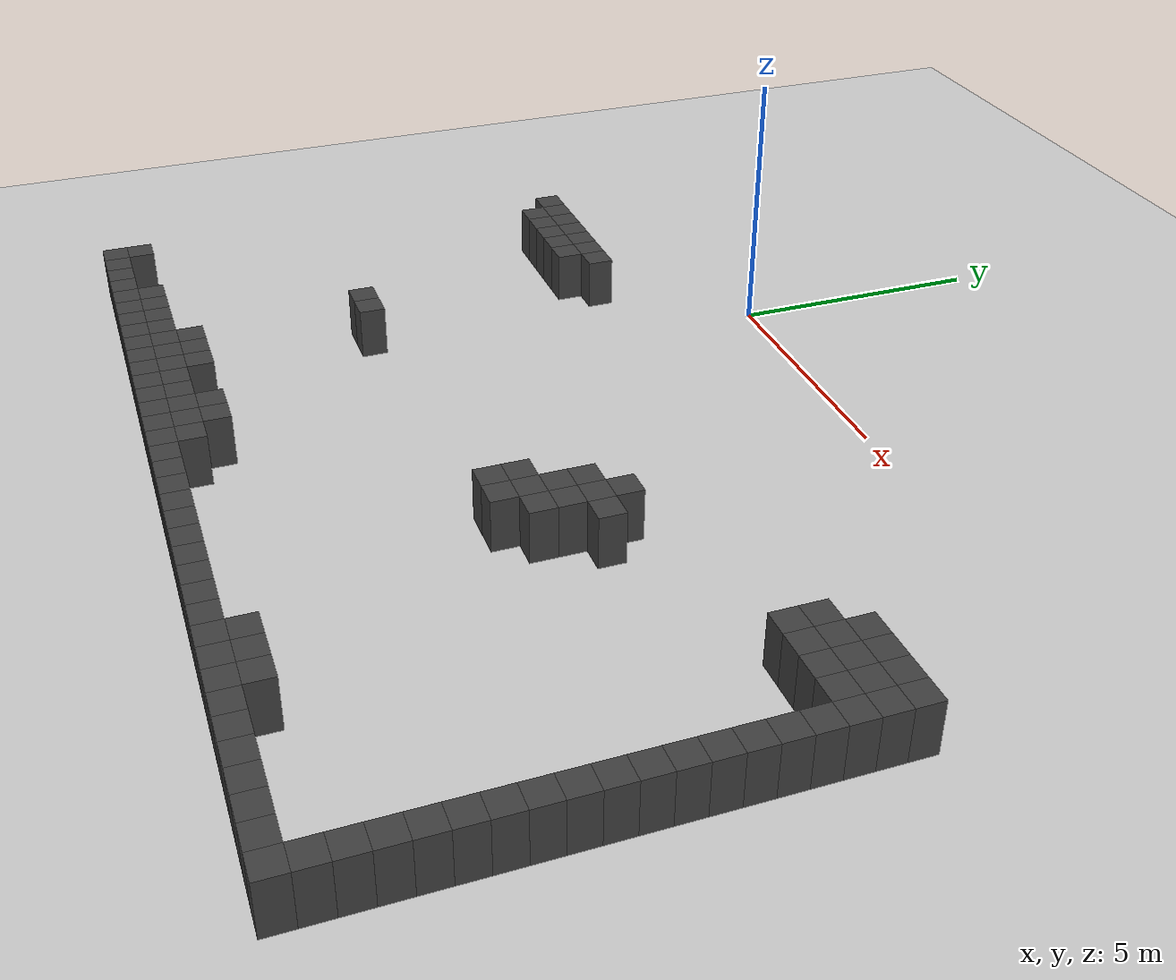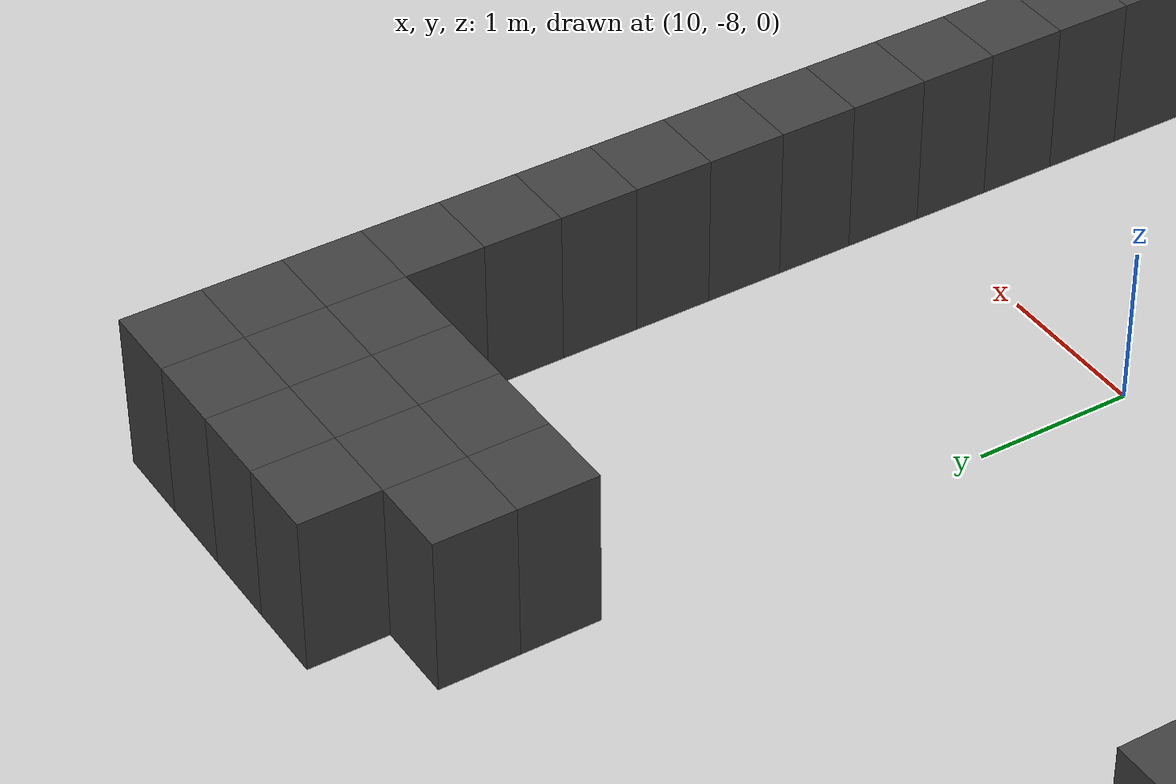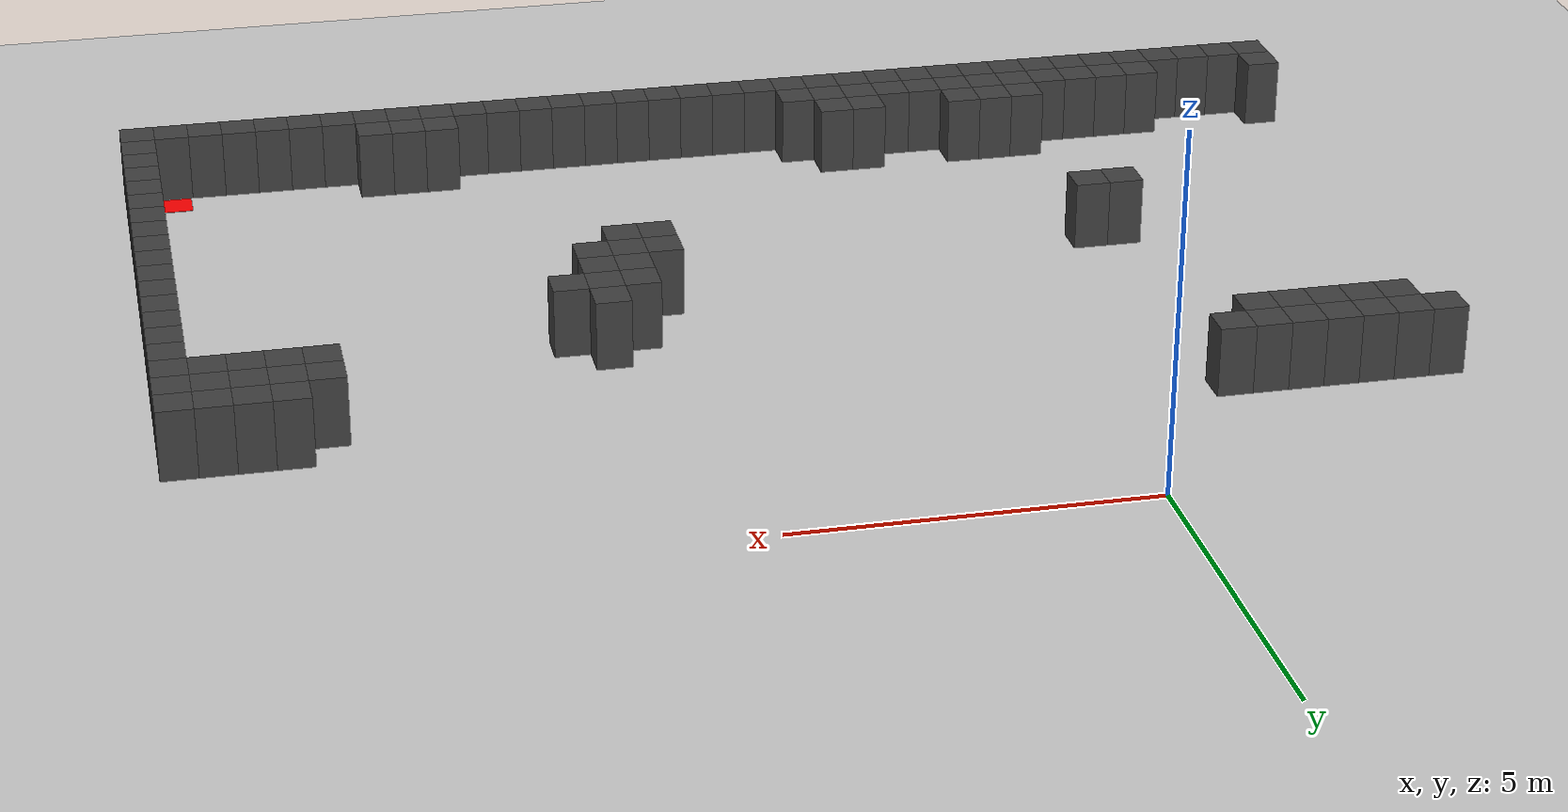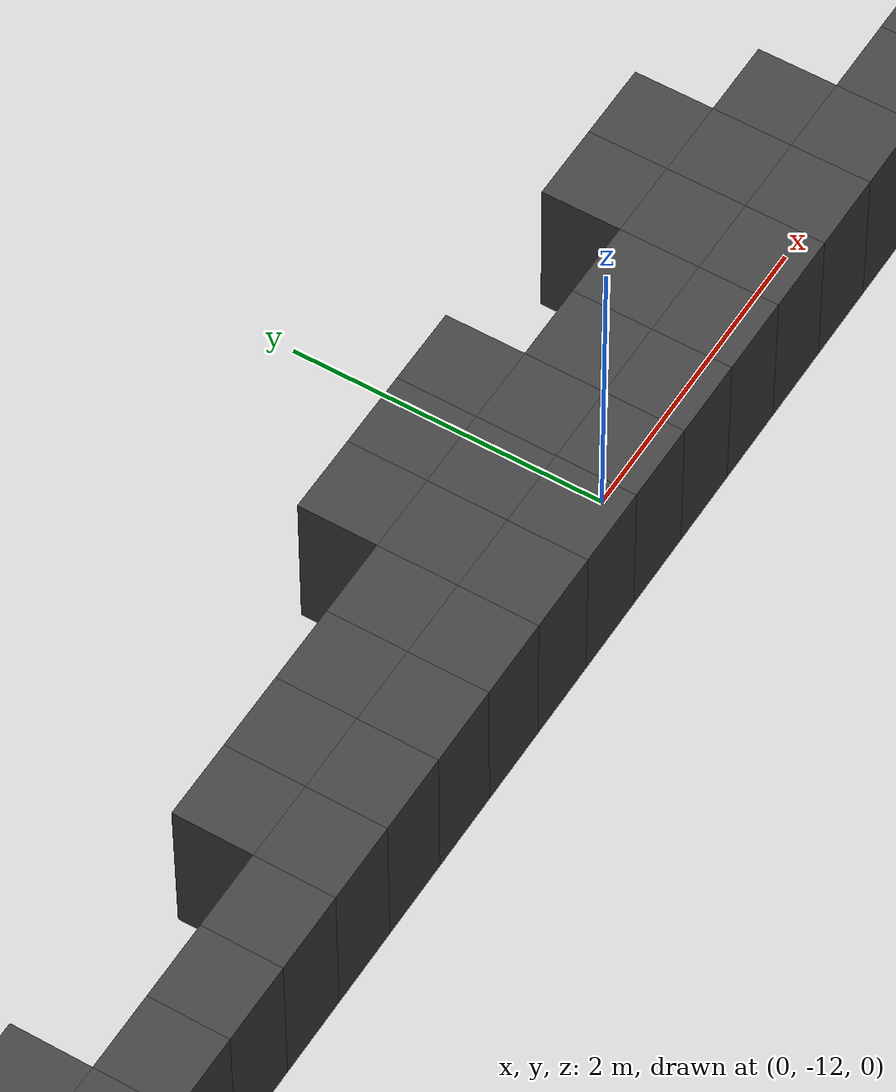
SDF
<sdf version="1.7">
 <world name="map_7219">
  <model name="ground_plane">
   <static>true</static>
   <link name="link">
    <collision name="collision">
     <geometry><plane><normal>0 0 1</normal><size>200 200</size></plane></geometry>
    </collision>
    <visual name="visual">
     <geometry><plane><normal>0 0 1</normal><size>200 200</size></plane></geometry>
     <material><ambient>0.8 0.8 0.8 1</ambient><diffuse>0.8 0.8 0.8 1</diffuse></material>
    </visual>
   </link>
  </model>
  <model name="maze_environment">
   <static>true</static>
   <link name="wall_430">
    <pose>-4.750 -2.750 0.500 0 0 0</pose>
    <collision name="col"><geometry><box><size>0.5 0.5 1.0</size></box></geometry></collision>
    <visual name="vis">
     <geometry><box><size>0.5 0.5 1.0</size></box></geometry>
     <material><ambient>0.15 0.15 0.15 1</ambient><diffuse>0.25 0.25 0.25 1</diffuse></material>
    </visual>
   </link>
   <link name="wall_431">
    <pose>-4.250 -2.750 0.500 0 0 0</pose>
    <collision name="col"><geometry><box><size>0.5 0.5 1.0</size></box></geometry></collision>
    <visual name="vis">
     <geometry><box><size>0.5 0.5 1.0</size></box></geometry>
     <material><ambient>0.15 0.15 0.15 1</ambient><diffuse>0.25 0.25 0.25 1</diffuse></material>
    </visual>
   </link>
   <link name="wall_432">
    <pose>-3.750 -2.750 0.500 0 0 0</pose>
    <collision name="col"><geometry><box><size>0.5 0.5 1.0</size></box></geometry></collision>
    <visual name="vis">
     <geometry><box><size>0.5 0.5 1.0</size></box></geometry>
     <material><ambient>0.15 0.15 0.15 1</ambient><diffuse>0.25 0.25 0.25 1</diffuse></material>
    </visual>
   </link>
   <link name="wall_433">
    <pose>-3.250 -2.750 0.500 0 0 0</pose>
    <collision name="col"><geometry><box><size>0.5 0.5 1.0</size></box></geometry></collision>
    <visual name="vis">
     <geometry><box><size>0.5 0.5 1.0</size></box></geometry>
     <material><ambient>0.15 0.15 0.15 1</ambient><diffuse>0.25 0.25 0.25 1</diffuse></material>
    </visual>
   </link>
   <link name="wall_434">
    <pose>-2.750 -2.750 0.500 0 0 0</pose>
    <collision name="col"><geometry><box><size>0.5 0.5 1.0</size></box></geometry></collision>
    <visual name="vis">
     <geometry><box><size>0.5 0.5 1.0</size></box></geometry>
     <material><ambient>0.15 0.15 0.15 1</ambient><diffuse>0.25 0.25 0.25 1</diffuse></material>
    </visual>
   </link>
   <link name="wall_435">
    <pose>-2.250 -2.750 0.500 0 0 0</pose>
    <collision name="col"><geometry><box><size>0.5 0.5 1.0</size></box></geometry></collision>
    <visual name="vis">
     <geometry><box><size>0.5 0.5 1.0</size></box></geometry>
     <material><ambient>0.15 0.15 0.15 1</ambient><diffuse>0.25 0.25 0.25 1</diffuse></material>
    </visual>
   </link>
   <link name="wall_436">
    <pose>-1.750 -2.750 0.500 0 0 0</pose>
    <collision name="col"><geometry><box><size>0.5 0.5 1.0</size></box></geometry></collision>
    <visual name="vis">
     <geometry><box><size>0.5 0.5 1.0</size></box></geometry>
     <material><ambient>0.15 0.15 0.15 1</ambient><diffuse>0.25 0.25 0.25 1</diffuse></material>
    </visual>
   </link>
   <link name="wall_440">
    <pose>-4.250 -3.250 0.500 0 0 0</pose>
    <collision name="col"><geometry><box><size>0.5 0.5 1.0</size></box></geometry></collision>
    <visual name="vis">
     <geometry><box><size>0.5 0.5 1.0</size></box></geometry>
     <material><ambient>0.15 0.15 0.15 1</ambient><diffuse>0.25 0.25 0.25 1</diffuse></material>
    </visual>
   </link>
   <link name="wall_441">
    <pose>-3.750 -3.250 0.500 0 0 0</pose>
    <collision name="col"><geometry><box><size>0.5 0.5 1.0</size></box></geometry></collision>
    <visual name="vis">
     <geometry><box><size>0.5 0.5 1.0</size></box></geometry>
     <material><ambient>0.15 0.15 0.15 1</ambient><diffuse>0.25 0.25 0.25 1</diffuse></material>
    </visual>
   </link>
   <link name="wall_442">
    <pose>-3.250 -3.250 0.500 0 0 0</pose>
    <collision name="col"><geometry><box><size>0.5 0.5 1.0</size></box></geometry></collision>
    <visual name="vis">
     <geometry><box><size>0.5 0.5 1.0</size></box></geometry>
     <material><ambient>0.15 0.15 0.15 1</ambient><diffuse>0.25 0.25 0.25 1</diffuse></material>
    </visual>
   </link>
   <link name="wall_443">
    <pose>-2.750 -3.250 0.500 0 0 0</pose>
    <collision name="col"><geometry><box><size>0.5 0.5 1.0</size></box></geometry></collision>
    <visual name="vis">
     <geometry><box><size>0.5 0.5 1.0</size></box></geometry>
     <material><ambient>0.15 0.15 0.15 1</ambient><diffuse>0.25 0.25 0.25 1</diffuse></material>
    </visual>
   </link>
   <link name="wall_444">
    <pose>-2.250 -3.250 0.500 0 0 0</pose>
    <collision name="col"><geometry><box><size>0.5 0.5 1.0</size></box></geometry></collision>
    <visual name="vis">
     <geometry><box><size>0.5 0.5 1.0</size></box></geometry>
     <material><ambient>0.15 0.15 0.15 1</ambient><diffuse>0.25 0.25 0.25 1</diffuse></material>
    </visual>
   </link>
   <link name="wall_445">
    <pose>10.750 -3.250 0.500 0 0 0</pose>
    <collision name="col"><geometry><box><size>0.5 0.5 1.0</size></box></geometry></collision>
    <visual name="vis">
     <geometry><box><size>0.5 0.5 1.0</size></box></geometry>
     <material><ambient>0.15 0.15 0.15 1</ambient><diffuse>0.25 0.25 0.25 1</diffuse></material>
    </visual>
   </link>
   <link name="wall_446">
    <pose>11.250 -3.250 0.500 0 0 0</pose>
    <collision name="col"><geometry><box><size>0.5 0.5 1.0</size></box></geometry></collision>
    <visual name="vis">
     <geometry><box><size>0.5 0.5 1.0</size></box></geometry>
     <material><ambient>0.15 0.15 0.15 1</ambient><diffuse>0.25 0.25 0.25 1</diffuse></material>
    </visual>
   </link>
   <link name="wall_447">
    <pose>11.750 -3.250 0.500 0 0 0</pose>
    <collision name="col"><geometry><box><size>0.5 0.5 1.0</size></box></geometry></collision>
    <visual name="vis">
     <geometry><box><size>0.5 0.5 1.0</size></box></geometry>
     <material><ambient>0.15 0.15 0.15 1</ambient><diffuse>0.25 0.25 0.25 1</diffuse></material>
    </visual>
   </link>
   <link name="wall_448">
    <pose>12.250 -3.250 0.500 0 0 0</pose>
    <collision name="col"><geometry><box><size>0.5 0.5 1.0</size></box></geometry></collision>
    <visual name="vis">
     <geometry><box><size>0.5 0.5 1.0</size></box></geometry>
     <material><ambient>0.15 0.15 0.15 1</ambient><diffuse>0.25 0.25 0.25 1</diffuse></material>
    </visual>
   </link>
   <link name="wall_452">
    <pose>10.250 -3.750 0.500 0 0 0</pose>
    <collision name="col"><geometry><box><size>0.5 0.5 1.0</size></box></geometry></collision>
    <visual name="vis">
     <geometry><box><size>0.5 0.5 1.0</size></box></geometry>
     <material><ambient>0.15 0.15 0.15 1</ambient><diffuse>0.25 0.25 0.25 1</diffuse></material>
    </visual>
   </link>
   <link name="wall_453">
    <pose>10.750 -3.750 0.500 0 0 0</pose>
    <collision name="col"><geometry><box><size>0.5 0.5 1.0</size></box></geometry></collision>
    <visual name="vis">
     <geometry><box><size>0.5 0.5 1.0</size></box></geometry>
     <material><ambient>0.15 0.15 0.15 1</ambient><diffuse>0.25 0.25 0.25 1</diffuse></material>
    </visual>
   </link>
   <link name="wall_454">
    <pose>11.250 -3.750 0.500 0 0 0</pose>
    <collision name="col"><geometry><box><size>0.5 0.5 1.0</size></box></geometry></collision>
    <visual name="vis">
     <geometry><box><size>0.5 0.5 1.0</size></box></geometry>
     <material><ambient>0.15 0.15 0.15 1</ambient><diffuse>0.25 0.25 0.25 1</diffuse></material>
    </visual>
   </link>
   <link name="wall_455">
    <pose>11.750 -3.750 0.500 0 0 0</pose>
    <collision name="col"><geometry><box><size>0.5 0.5 1.0</size></box></geometry></collision>
    <visual name="vis">
     <geometry><box><size>0.5 0.5 1.0</size></box></geometry>
     <material><ambient>0.15 0.15 0.15 1</ambient><diffuse>0.25 0.25 0.25 1</diffuse></material>
    </visual>
   </link>
   <link name="wall_456">
    <pose>12.250 -3.750 0.500 0 0 0</pose>
    <collision name="col"><geometry><box><size>0.5 0.5 1.0</size></box></geometry></collision>
    <visual name="vis">
     <geometry><box><size>0.5 0.5 1.0</size></box></geometry>
     <material><ambient>0.15 0.15 0.15 1</ambient><diffuse>0.25 0.25 0.25 1</diffuse></material>
    </visual>
   </link>
   <link name="wall_462">
    <pose>10.250 -4.250 0.500 0 0 0</pose>
    <collision name="col"><geometry><box><size>0.5 0.5 1.0</size></box></geometry></collision>
    <visual name="vis">
     <geometry><box><size>0.5 0.5 1.0</size></box></geometry>
     <material><ambient>0.15 0.15 0.15 1</ambient><diffuse>0.25 0.25 0.25 1</diffuse></material>
    </visual>
   </link>
   <link name="wall_463">
    <pose>10.750 -4.250 0.500 0 0 0</pose>
    <collision name="col"><geometry><box><size>0.5 0.5 1.0</size></box></geometry></collision>
    <visual name="vis">
     <geometry><box><size>0.5 0.5 1.0</size></box></geometry>
     <material><ambient>0.15 0.15 0.15 1</ambient><diffuse>0.25 0.25 0.25 1</diffuse></material>
    </visual>
   </link>
   <link name="wall_464">
    <pose>11.250 -4.250 0.500 0 0 0</pose>
    <collision name="col"><geometry><box><size>0.5 0.5 1.0</size></box></geometry></collision>
    <visual name="vis">
     <geometry><box><size>0.5 0.5 1.0</size></box></geometry>
     <material><ambient>0.15 0.15 0.15 1</ambient><diffuse>0.25 0.25 0.25 1</diffuse></material>
    </visual>
   </link>
   <link name="wall_465">
    <pose>11.750 -4.250 0.500 0 0 0</pose>
    <collision name="col"><geometry><box><size>0.5 0.5 1.0</size></box></geometry></collision>
    <visual name="vis">
     <geometry><box><size>0.5 0.5 1.0</size></box></geometry>
     <material><ambient>0.15 0.15 0.15 1</ambient><diffuse>0.25 0.25 0.25 1</diffuse></material>
    </visual>
   </link>
   <link name="wall_466">
    <pose>12.250 -4.250 0.500 0 0 0</pose>
    <collision name="col"><geometry><box><size>0.5 0.5 1.0</size></box></geometry></collision>
    <visual name="vis">
     <geometry><box><size>0.5 0.5 1.0</size></box></geometry>
     <material><ambient>0.15 0.15 0.15 1</ambient><diffuse>0.25 0.25 0.25 1</diffuse></material>
    </visual>
   </link>
   <link name="wall_473">
    <pose>12.250 -4.750 0.500 0 0 0</pose>
    <collision name="col"><geometry><box><size>0.5 0.5 1.0</size></box></geometry></collision>
    <visual name="vis">
     <geometry><box><size>0.5 0.5 1.0</size></box></geometry>
     <material><ambient>0.15 0.15 0.15 1</ambient><diffuse>0.25 0.25 0.25 1</diffuse></material>
    </visual>
   </link>
   <link name="wall_480">
    <pose>6.250 -5.250 0.500 0 0 0</pose>
    <collision name="col"><geometry><box><size>0.5 0.5 1.0</size></box></geometry></collision>
    <visual name="vis">
     <geometry><box><size>0.5 0.5 1.0</size></box></geometry>
     <material><ambient>0.15 0.15 0.15 1</ambient><diffuse>0.25 0.25 0.25 1</diffuse></material>
    </visual>
   </link>
   <link name="wall_481">
    <pose>12.250 -5.250 0.500 0 0 0</pose>
    <collision name="col"><geometry><box><size>0.5 0.5 1.0</size></box></geometry></collision>
    <visual name="vis">
     <geometry><box><size>0.5 0.5 1.0</size></box></geometry>
     <material><ambient>0.15 0.15 0.15 1</ambient><diffuse>0.25 0.25 0.25 1</diffuse></material>
    </visual>
   </link>
   <link name="wall_494">
    <pose>5.750 -5.750 0.500 0 0 0</pose>
    <collision name="col"><geometry><box><size>0.5 0.5 1.0</size></box></geometry></collision>
    <visual name="vis">
     <geometry><box><size>0.5 0.5 1.0</size></box></geometry>
     <material><ambient>0.15 0.15 0.15 1</ambient><diffuse>0.25 0.25 0.25 1</diffuse></material>
    </visual>
   </link>
   <link name="wall_495">
    <pose>6.250 -5.750 0.500 0 0 0</pose>
    <collision name="col"><geometry><box><size>0.5 0.5 1.0</size></box></geometry></collision>
    <visual name="vis">
     <geometry><box><size>0.5 0.5 1.0</size></box></geometry>
     <material><ambient>0.15 0.15 0.15 1</ambient><diffuse>0.25 0.25 0.25 1</diffuse></material>
    </visual>
   </link>
   <link name="wall_496">
    <pose>6.750 -5.750 0.500 0 0 0</pose>
    <collision name="col"><geometry><box><size>0.5 0.5 1.0</size></box></geometry></collision>
    <visual name="vis">
     <geometry><box><size>0.5 0.5 1.0</size></box></geometry>
     <material><ambient>0.15 0.15 0.15 1</ambient><diffuse>0.25 0.25 0.25 1</diffuse></material>
    </visual>
   </link>
   <link name="wall_497">
    <pose>12.250 -5.750 0.500 0 0 0</pose>
    <collision name="col"><geometry><box><size>0.5 0.5 1.0</size></box></geometry></collision>
    <visual name="vis">
     <geometry><box><size>0.5 0.5 1.0</size></box></geometry>
     <material><ambient>0.15 0.15 0.15 1</ambient><diffuse>0.25 0.25 0.25 1</diffuse></material>
    </visual>
   </link>
   <link name="wall_509">
    <pose>5.750 -6.250 0.500 0 0 0</pose>
    <collision name="col"><geometry><box><size>0.5 0.5 1.0</size></box></geometry></collision>
    <visual name="vis">
     <geometry><box><size>0.5 0.5 1.0</size></box></geometry>
     <material><ambient>0.15 0.15 0.15 1</ambient><diffuse>0.25 0.25 0.25 1</diffuse></material>
    </visual>
   </link>
   <link name="wall_510">
    <pose>6.250 -6.250 0.500 0 0 0</pose>
    <collision name="col"><geometry><box><size>0.5 0.5 1.0</size></box></geometry></collision>
    <visual name="vis">
     <geometry><box><size>0.5 0.5 1.0</size></box></geometry>
     <material><ambient>0.15 0.15 0.15 1</ambient><diffuse>0.25 0.25 0.25 1</diffuse></material>
    </visual>
   </link>
   <link name="wall_511">
    <pose>12.250 -6.250 0.500 0 0 0</pose>
    <collision name="col"><geometry><box><size>0.5 0.5 1.0</size></box></geometry></collision>
    <visual name="vis">
     <geometry><box><size>0.5 0.5 1.0</size></box></geometry>
     <material><ambient>0.15 0.15 0.15 1</ambient><diffuse>0.25 0.25 0.25 1</diffuse></material>
    </visual>
   </link>
   <link name="wall_522">
    <pose>5.250 -6.750 0.500 0 0 0</pose>
    <collision name="col"><geometry><box><size>0.5 0.5 1.0</size></box></geometry></collision>
    <visual name="vis">
     <geometry><box><size>0.5 0.5 1.0</size></box></geometry>
     <material><ambient>0.15 0.15 0.15 1</ambient><diffuse>0.25 0.25 0.25 1</diffuse></material>
    </visual>
   </link>
   <link name="wall_523">
    <pose>5.750 -6.750 0.500 0 0 0</pose>
    <collision name="col"><geometry><box><size>0.5 0.5 1.0</size></box></geometry></collision>
    <visual name="vis">
     <geometry><box><size>0.5 0.5 1.0</size></box></geometry>
     <material><ambient>0.15 0.15 0.15 1</ambient><diffuse>0.25 0.25 0.25 1</diffuse></material>
    </visual>
   </link>
   <link name="wall_524">
    <pose>6.250 -6.750 0.500 0 0 0</pose>
    <collision name="col"><geometry><box><size>0.5 0.5 1.0</size></box></geometry></collision>
    <visual name="vis">
     <geometry><box><size>0.5 0.5 1.0</size></box></geometry>
     <material><ambient>0.15 0.15 0.15 1</ambient><diffuse>0.25 0.25 0.25 1</diffuse></material>
    </visual>
   </link>
   <link name="wall_525">
    <pose>12.250 -6.750 0.500 0 0 0</pose>
    <collision name="col"><geometry><box><size>0.5 0.5 1.0</size></box></geometry></collision>
    <visual name="vis">
     <geometry><box><size>0.5 0.5 1.0</size></box></geometry>
     <material><ambient>0.15 0.15 0.15 1</ambient><diffuse>0.25 0.25 0.25 1</diffuse></material>
    </visual>
   </link>
   <link name="wall_535">
    <pose>5.250 -7.250 0.500 0 0 0</pose>
    <collision name="col"><geometry><box><size>0.5 0.5 1.0</size></box></geometry></collision>
    <visual name="vis">
     <geometry><box><size>0.5 0.5 1.0</size></box></geometry>
     <material><ambient>0.15 0.15 0.15 1</ambient><diffuse>0.25 0.25 0.25 1</diffuse></material>
    </visual>
   </link>
   <link name="wall_536">
    <pose>5.750 -7.250 0.500 0 0 0</pose>
    <collision name="col"><geometry><box><size>0.5 0.5 1.0</size></box></geometry></collision>
    <visual name="vis">
     <geometry><box><size>0.5 0.5 1.0</size></box></geometry>
     <material><ambient>0.15 0.15 0.15 1</ambient><diffuse>0.25 0.25 0.25 1</diffuse></material>
    </visual>
   </link>
   <link name="wall_537">
    <pose>12.250 -7.250 0.500 0 0 0</pose>
    <collision name="col"><geometry><box><size>0.5 0.5 1.0</size></box></geometry></collision>
    <visual name="vis">
     <geometry><box><size>0.5 0.5 1.0</size></box></geometry>
     <material><ambient>0.15 0.15 0.15 1</ambient><diffuse>0.25 0.25 0.25 1</diffuse></material>
    </visual>
   </link>
   <link name="wall_543">
    <pose>-1.750 -7.750 0.500 0 0 0</pose>
    <collision name="col"><geometry><box><size>0.5 0.5 1.0</size></box></geometry></collision>
    <visual name="vis">
     <geometry><box><size>0.5 0.5 1.0</size></box></geometry>
     <material><ambient>0.15 0.15 0.15 1</ambient><diffuse>0.25 0.25 0.25 1</diffuse></material>
    </visual>
   </link>
   <link name="wall_544">
    <pose>-1.250 -7.750 0.500 0 0 0</pose>
    <collision name="col"><geometry><box><size>0.5 0.5 1.0</size></box></geometry></collision>
    <visual name="vis">
     <geometry><box><size>0.5 0.5 1.0</size></box></geometry>
     <material><ambient>0.15 0.15 0.15 1</ambient><diffuse>0.25 0.25 0.25 1</diffuse></material>
    </visual>
   </link>
   <link name="wall_545">
    <pose>12.250 -7.750 0.500 0 0 0</pose>
    <collision name="col"><geometry><box><size>0.5 0.5 1.0</size></box></geometry></collision>
    <visual name="vis">
     <geometry><box><size>0.5 0.5 1.0</size></box></geometry>
     <material><ambient>0.15 0.15 0.15 1</ambient><diffuse>0.25 0.25 0.25 1</diffuse></material>
    </visual>
   </link>
   <link name="wall_550">
    <pose>12.250 -8.250 0.500 0 0 0</pose>
    <collision name="col"><geometry><box><size>0.5 0.5 1.0</size></box></geometry></collision>
    <visual name="vis">
     <geometry><box><size>0.5 0.5 1.0</size></box></geometry>
     <material><ambient>0.15 0.15 0.15 1</ambient><diffuse>0.25 0.25 0.25 1</diffuse></material>
    </visual>
   </link>
   <link name="wall_555">
    <pose>12.250 -8.750 0.500 0 0 0</pose>
    <collision name="col"><geometry><box><size>0.5 0.5 1.0</size></box></geometry></collision>
    <visual name="vis">
     <geometry><box><size>0.5 0.5 1.0</size></box></geometry>
     <material><ambient>0.15 0.15 0.15 1</ambient><diffuse>0.25 0.25 0.25 1</diffuse></material>
    </visual>
   </link>
   <link name="wall_560">
    <pose>12.250 -9.250 0.500 0 0 0</pose>
    <collision name="col"><geometry><box><size>0.5 0.5 1.0</size></box></geometry></collision>
    <visual name="vis">
     <geometry><box><size>0.5 0.5 1.0</size></box></geometry>
     <material><ambient>0.15 0.15 0.15 1</ambient><diffuse>0.25 0.25 0.25 1</diffuse></material>
    </visual>
   </link>
   <link name="wall_565">
    <pose>12.250 -9.750 0.500 0 0 0</pose>
    <collision name="col"><geometry><box><size>0.5 0.5 1.0</size></box></geometry></collision>
    <visual name="vis">
     <geometry><box><size>0.5 0.5 1.0</size></box></geometry>
     <material><ambient>0.15 0.15 0.15 1</ambient><diffuse>0.25 0.25 0.25 1</diffuse></material>
    </visual>
   </link>
   <link name="wall_571">
    <pose>12.250 -10.250 0.500 0 0 0</pose>
    <collision name="col"><geometry><box><size>0.5 0.5 1.0</size></box></geometry></collision>
    <visual name="vis">
     <geometry><box><size>0.5 0.5 1.0</size></box></geometry>
     <material><ambient>0.15 0.15 0.15 1</ambient><diffuse>0.25 0.25 0.25 1</diffuse></material>
    </visual>
   </link>
   <link name="wall_577">
    <pose>12.250 -10.750 0.500 0 0 0</pose>
    <collision name="col"><geometry><box><size>0.5 0.5 1.0</size></box></geometry></collision>
    <visual name="vis">
     <geometry><box><size>0.5 0.5 1.0</size></box></geometry>
     <material><ambient>0.15 0.15 0.15 1</ambient><diffuse>0.25 0.25 0.25 1</diffuse></material>
    </visual>
   </link>
   <link name="wall_584">
    <pose>-1.250 -11.250 0.500 0 0 0</pose>
    <collision name="col"><geometry><box><size>0.5 0.5 1.0</size></box></geometry></collision>
    <visual name="vis">
     <geometry><box><size>0.5 0.5 1.0</size></box></geometry>
     <material><ambient>0.15 0.15 0.15 1</ambient><diffuse>0.25 0.25 0.25 1</diffuse></material>
    </visual>
   </link>
   <link name="wall_585">
    <pose>-0.750 -11.250 0.500 0 0 0</pose>
    <collision name="col"><geometry><box><size>0.5 0.5 1.0</size></box></geometry></collision>
    <visual name="vis">
     <geometry><box><size>0.5 0.5 1.0</size></box></geometry>
     <material><ambient>0.15 0.15 0.15 1</ambient><diffuse>0.25 0.25 0.25 1</diffuse></material>
    </visual>
   </link>
   <link name="wall_586">
    <pose>-0.250 -11.250 0.500 0 0 0</pose>
    <collision name="col"><geometry><box><size>0.5 0.5 1.0</size></box></geometry></collision>
    <visual name="vis">
     <geometry><box><size>0.5 0.5 1.0</size></box></geometry>
     <material><ambient>0.15 0.15 0.15 1</ambient><diffuse>0.25 0.25 0.25 1</diffuse></material>
    </visual>
   </link>
   <link name="wall_587">
    <pose>1.250 -11.250 0.500 0 0 0</pose>
    <collision name="col"><geometry><box><size>0.5 0.5 1.0</size></box></geometry></collision>
    <visual name="vis">
     <geometry><box><size>0.5 0.5 1.0</size></box></geometry>
     <material><ambient>0.15 0.15 0.15 1</ambient><diffuse>0.25 0.25 0.25 1</diffuse></material>
    </visual>
   </link>
   <link name="wall_588">
    <pose>1.750 -11.250 0.500 0 0 0</pose>
    <collision name="col"><geometry><box><size>0.5 0.5 1.0</size></box></geometry></collision>
    <visual name="vis">
     <geometry><box><size>0.5 0.5 1.0</size></box></geometry>
     <material><ambient>0.15 0.15 0.15 1</ambient><diffuse>0.25 0.25 0.25 1</diffuse></material>
    </visual>
   </link>
   <link name="wall_589">
    <pose>12.250 -11.250 0.500 0 0 0</pose>
    <collision name="col"><geometry><box><size>0.5 0.5 1.0</size></box></geometry></collision>
    <visual name="vis">
     <geometry><box><size>0.5 0.5 1.0</size></box></geometry>
     <material><ambient>0.15 0.15 0.15 1</ambient><diffuse>0.25 0.25 0.25 1</diffuse></material>
    </visual>
   </link>
   <link name="wall_604">
    <pose>-5.250 -11.750 0.500 0 0 0</pose>
    <collision name="col"><geometry><box><size>0.5 0.5 1.0</size></box></geometry></collision>
    <visual name="vis">
     <geometry><box><size>0.5 0.5 1.0</size></box></geometry>
     <material><ambient>0.15 0.15 0.15 1</ambient><diffuse>0.25 0.25 0.25 1</diffuse></material>
    </visual>
   </link>
   <link name="wall_605">
    <pose>-3.250 -11.750 0.500 0 0 0</pose>
    <collision name="col"><geometry><box><size>0.5 0.5 1.0</size></box></geometry></collision>
    <visual name="vis">
     <geometry><box><size>0.5 0.5 1.0</size></box></geometry>
     <material><ambient>0.15 0.15 0.15 1</ambient><diffuse>0.25 0.25 0.25 1</diffuse></material>
    </visual>
   </link>
   <link name="wall_606">
    <pose>-2.750 -11.750 0.500 0 0 0</pose>
    <collision name="col"><geometry><box><size>0.5 0.5 1.0</size></box></geometry></collision>
    <visual name="vis">
     <geometry><box><size>0.5 0.5 1.0</size></box></geometry>
     <material><ambient>0.15 0.15 0.15 1</ambient><diffuse>0.25 0.25 0.25 1</diffuse></material>
    </visual>
   </link>
   <link name="wall_607">
    <pose>-2.250 -11.750 0.500 0 0 0</pose>
    <collision name="col"><geometry><box><size>0.5 0.5 1.0</size></box></geometry></collision>
    <visual name="vis">
     <geometry><box><size>0.5 0.5 1.0</size></box></geometry>
     <material><ambient>0.15 0.15 0.15 1</ambient><diffuse>0.25 0.25 0.25 1</diffuse></material>
    </visual>
   </link>
   <link name="wall_608">
    <pose>-1.750 -11.750 0.500 0 0 0</pose>
    <collision name="col"><geometry><box><size>0.5 0.5 1.0</size></box></geometry></collision>
    <visual name="vis">
     <geometry><box><size>0.5 0.5 1.0</size></box></geometry>
     <material><ambient>0.15 0.15 0.15 1</ambient><diffuse>0.25 0.25 0.25 1</diffuse></material>
    </visual>
   </link>
   <link name="wall_609">
    <pose>-1.250 -11.750 0.500 0 0 0</pose>
    <collision name="col"><geometry><box><size>0.5 0.5 1.0</size></box></geometry></collision>
    <visual name="vis">
     <geometry><box><size>0.5 0.5 1.0</size></box></geometry>
     <material><ambient>0.15 0.15 0.15 1</ambient><diffuse>0.25 0.25 0.25 1</diffuse></material>
    </visual>
   </link>
   <link name="wall_610">
    <pose>-0.750 -11.750 0.500 0 0 0</pose>
    <collision name="col"><geometry><box><size>0.5 0.5 1.0</size></box></geometry></collision>
    <visual name="vis">
     <geometry><box><size>0.5 0.5 1.0</size></box></geometry>
     <material><ambient>0.15 0.15 0.15 1</ambient><diffuse>0.25 0.25 0.25 1</diffuse></material>
    </visual>
   </link>
   <link name="wall_611">
    <pose>-0.250 -11.750 0.500 0 0 0</pose>
    <collision name="col"><geometry><box><size>0.5 0.5 1.0</size></box></geometry></collision>
    <visual name="vis">
     <geometry><box><size>0.5 0.5 1.0</size></box></geometry>
     <material><ambient>0.15 0.15 0.15 1</ambient><diffuse>0.25 0.25 0.25 1</diffuse></material>
    </visual>
   </link>
   <link name="wall_612">
    <pose>0.250 -11.750 0.500 0 0 0</pose>
    <collision name="col"><geometry><box><size>0.5 0.5 1.0</size></box></geometry></collision>
    <visual name="vis">
     <geometry><box><size>0.5 0.5 1.0</size></box></geometry>
     <material><ambient>0.15 0.15 0.15 1</ambient><diffuse>0.25 0.25 0.25 1</diffuse></material>
    </visual>
   </link>
   <link name="wall_613">
    <pose>0.750 -11.750 0.500 0 0 0</pose>
    <collision name="col"><geometry><box><size>0.5 0.5 1.0</size></box></geometry></collision>
    <visual name="vis">
     <geometry><box><size>0.5 0.5 1.0</size></box></geometry>
     <material><ambient>0.15 0.15 0.15 1</ambient><diffuse>0.25 0.25 0.25 1</diffuse></material>
    </visual>
   </link>
   <link name="wall_614">
    <pose>1.250 -11.750 0.500 0 0 0</pose>
    <collision name="col"><geometry><box><size>0.5 0.5 1.0</size></box></geometry></collision>
    <visual name="vis">
     <geometry><box><size>0.5 0.5 1.0</size></box></geometry>
     <material><ambient>0.15 0.15 0.15 1</ambient><diffuse>0.25 0.25 0.25 1</diffuse></material>
    </visual>
   </link>
   <link name="wall_615">
    <pose>1.750 -11.750 0.500 0 0 0</pose>
    <collision name="col"><geometry><box><size>0.5 0.5 1.0</size></box></geometry></collision>
    <visual name="vis">
     <geometry><box><size>0.5 0.5 1.0</size></box></geometry>
     <material><ambient>0.15 0.15 0.15 1</ambient><diffuse>0.25 0.25 0.25 1</diffuse></material>
    </visual>
   </link>
   <link name="wall_616">
    <pose>2.250 -11.750 0.500 0 0 0</pose>
    <collision name="col"><geometry><box><size>0.5 0.5 1.0</size></box></geometry></collision>
    <visual name="vis">
     <geometry><box><size>0.5 0.5 1.0</size></box></geometry>
     <material><ambient>0.15 0.15 0.15 1</ambient><diffuse>0.25 0.25 0.25 1</diffuse></material>
    </visual>
   </link>
   <link name="wall_617">
    <pose>7.750 -11.750 0.500 0 0 0</pose>
    <collision name="col"><geometry><box><size>0.5 0.5 1.0</size></box></geometry></collision>
    <visual name="vis">
     <geometry><box><size>0.5 0.5 1.0</size></box></geometry>
     <material><ambient>0.15 0.15 0.15 1</ambient><diffuse>0.25 0.25 0.25 1</diffuse></material>
    </visual>
   </link>
   <link name="wall_618">
    <pose>8.250 -11.750 0.500 0 0 0</pose>
    <collision name="col"><geometry><box><size>0.5 0.5 1.0</size></box></geometry></collision>
    <visual name="vis">
     <geometry><box><size>0.5 0.5 1.0</size></box></geometry>
     <material><ambient>0.15 0.15 0.15 1</ambient><diffuse>0.25 0.25 0.25 1</diffuse></material>
    </visual>
   </link>
   <link name="wall_619">
    <pose>8.750 -11.750 0.500 0 0 0</pose>
    <collision name="col"><geometry><box><size>0.5 0.5 1.0</size></box></geometry></collision>
    <visual name="vis">
     <geometry><box><size>0.5 0.5 1.0</size></box></geometry>
     <material><ambient>0.15 0.15 0.15 1</ambient><diffuse>0.25 0.25 0.25 1</diffuse></material>
    </visual>
   </link>
   <link name="wall_620">
    <pose>12.250 -11.750 0.500 0 0 0</pose>
    <collision name="col"><geometry><box><size>0.5 0.5 1.0</size></box></geometry></collision>
    <visual name="vis">
     <geometry><box><size>0.5 0.5 1.0</size></box></geometry>
     <material><ambient>0.15 0.15 0.15 1</ambient><diffuse>0.25 0.25 0.25 1</diffuse></material>
    </visual>
   </link>
   <link name="wall_635">
    <pose>-5.250 -12.250 0.500 0 0 0</pose>
    <collision name="col"><geometry><box><size>0.5 0.5 1.0</size></box></geometry></collision>
    <visual name="vis">
     <geometry><box><size>0.5 0.5 1.0</size></box></geometry>
     <material><ambient>0.15 0.15 0.15 1</ambient><diffuse>0.25 0.25 0.25 1</diffuse></material>
    </visual>
   </link>
   <link name="wall_636">
    <pose>-4.750 -12.250 0.500 0 0 0</pose>
    <collision name="col"><geometry><box><size>0.5 0.5 1.0</size></box></geometry></collision>
    <visual name="vis">
     <geometry><box><size>0.5 0.5 1.0</size></box></geometry>
     <material><ambient>0.15 0.15 0.15 1</ambient><diffuse>0.25 0.25 0.25 1</diffuse></material>
    </visual>
   </link>
   <link name="wall_637">
    <pose>-4.250 -12.250 0.500 0 0 0</pose>
    <collision name="col"><geometry><box><size>0.5 0.5 1.0</size></box></geometry></collision>
    <visual name="vis">
     <geometry><box><size>0.5 0.5 1.0</size></box></geometry>
     <material><ambient>0.15 0.15 0.15 1</ambient><diffuse>0.25 0.25 0.25 1</diffuse></material>
    </visual>
   </link>
   <link name="wall_638">
    <pose>-3.750 -12.250 0.500 0 0 0</pose>
    <collision name="col"><geometry><box><size>0.5 0.5 1.0</size></box></geometry></collision>
    <visual name="vis">
     <geometry><box><size>0.5 0.5 1.0</size></box></geometry>
     <material><ambient>0.15 0.15 0.15 1</ambient><diffuse>0.25 0.25 0.25 1</diffuse></material>
    </visual>
   </link>
   <link name="wall_639">
    <pose>-3.250 -12.250 0.500 0 0 0</pose>
    <collision name="col"><geometry><box><size>0.5 0.5 1.0</size></box></geometry></collision>
    <visual name="vis">
     <geometry><box><size>0.5 0.5 1.0</size></box></geometry>
     <material><ambient>0.15 0.15 0.15 1</ambient><diffuse>0.25 0.25 0.25 1</diffuse></material>
    </visual>
   </link>
   <link name="wall_640">
    <pose>-2.750 -12.250 0.500 0 0 0</pose>
    <collision name="col"><geometry><box><size>0.5 0.5 1.0</size></box></geometry></collision>
    <visual name="vis">
     <geometry><box><size>0.5 0.5 1.0</size></box></geometry>
     <material><ambient>0.15 0.15 0.15 1</ambient><diffuse>0.25 0.25 0.25 1</diffuse></material>
    </visual>
   </link>
   <link name="wall_641">
    <pose>-2.250 -12.250 0.500 0 0 0</pose>
    <collision name="col"><geometry><box><size>0.5 0.5 1.0</size></box></geometry></collision>
    <visual name="vis">
     <geometry><box><size>0.5 0.5 1.0</size></box></geometry>
     <material><ambient>0.15 0.15 0.15 1</ambient><diffuse>0.25 0.25 0.25 1</diffuse></material>
    </visual>
   </link>
   <link name="wall_642">
    <pose>-1.750 -12.250 0.500 0 0 0</pose>
    <collision name="col"><geometry><box><size>0.5 0.5 1.0</size></box></geometry></collision>
    <visual name="vis">
     <geometry><box><size>0.5 0.5 1.0</size></box></geometry>
     <material><ambient>0.15 0.15 0.15 1</ambient><diffuse>0.25 0.25 0.25 1</diffuse></material>
    </visual>
   </link>
   <link name="wall_643">
    <pose>-1.250 -12.250 0.500 0 0 0</pose>
    <collision name="col"><geometry><box><size>0.5 0.5 1.0</size></box></geometry></collision>
    <visual name="vis">
     <geometry><box><size>0.5 0.5 1.0</size></box></geometry>
     <material><ambient>0.15 0.15 0.15 1</ambient><diffuse>0.25 0.25 0.25 1</diffuse></material>
    </visual>
   </link>
   <link name="wall_644">
    <pose>-0.750 -12.250 0.500 0 0 0</pose>
    <collision name="col"><geometry><box><size>0.5 0.5 1.0</size></box></geometry></collision>
    <visual name="vis">
     <geometry><box><size>0.5 0.5 1.0</size></box></geometry>
     <material><ambient>0.15 0.15 0.15 1</ambient><diffuse>0.25 0.25 0.25 1</diffuse></material>
    </visual>
   </link>
   <link name="wall_645">
    <pose>-0.250 -12.250 0.500 0 0 0</pose>
    <collision name="col"><geometry><box><size>0.5 0.5 1.0</size></box></geometry></collision>
    <visual name="vis">
     <geometry><box><size>0.5 0.5 1.0</size></box></geometry>
     <material><ambient>0.15 0.15 0.15 1</ambient><diffuse>0.25 0.25 0.25 1</diffuse></material>
    </visual>
   </link>
   <link name="wall_646">
    <pose>0.250 -12.250 0.500 0 0 0</pose>
    <collision name="col"><geometry><box><size>0.5 0.5 1.0</size></box></geometry></collision>
    <visual name="vis">
     <geometry><box><size>0.5 0.5 1.0</size></box></geometry>
     <material><ambient>0.15 0.15 0.15 1</ambient><diffuse>0.25 0.25 0.25 1</diffuse></material>
    </visual>
   </link>
   <link name="wall_647">
    <pose>0.750 -12.250 0.500 0 0 0</pose>
    <collision name="col"><geometry><box><size>0.5 0.5 1.0</size></box></geometry></collision>
    <visual name="vis">
     <geometry><box><size>0.5 0.5 1.0</size></box></geometry>
     <material><ambient>0.15 0.15 0.15 1</ambient><diffuse>0.25 0.25 0.25 1</diffuse></material>
    </visual>
   </link>
   <link name="wall_648">
    <pose>1.250 -12.250 0.500 0 0 0</pose>
    <collision name="col"><geometry><box><size>0.5 0.5 1.0</size></box></geometry></collision>
    <visual name="vis">
     <geometry><box><size>0.5 0.5 1.0</size></box></geometry>
     <material><ambient>0.15 0.15 0.15 1</ambient><diffuse>0.25 0.25 0.25 1</diffuse></material>
    </visual>
   </link>
   <link name="wall_649">
    <pose>1.750 -12.250 0.500 0 0 0</pose>
    <collision name="col"><geometry><box><size>0.5 0.5 1.0</size></box></geometry></collision>
    <visual name="vis">
     <geometry><box><size>0.5 0.5 1.0</size></box></geometry>
     <material><ambient>0.15 0.15 0.15 1</ambient><diffuse>0.25 0.25 0.25 1</diffuse></material>
    </visual>
   </link>
   <link name="wall_650">
    <pose>2.250 -12.250 0.500 0 0 0</pose>
    <collision name="col"><geometry><box><size>0.5 0.5 1.0</size></box></geometry></collision>
    <visual name="vis">
     <geometry><box><size>0.5 0.5 1.0</size></box></geometry>
     <material><ambient>0.15 0.15 0.15 1</ambient><diffuse>0.25 0.25 0.25 1</diffuse></material>
    </visual>
   </link>
   <link name="wall_651">
    <pose>2.750 -12.250 0.500 0 0 0</pose>
    <collision name="col"><geometry><box><size>0.5 0.5 1.0</size></box></geometry></collision>
    <visual name="vis">
     <geometry><box><size>0.5 0.5 1.0</size></box></geometry>
     <material><ambient>0.15 0.15 0.15 1</ambient><diffuse>0.25 0.25 0.25 1</diffuse></material>
    </visual>
   </link>
   <link name="wall_652">
    <pose>3.250 -12.250 0.500 0 0 0</pose>
    <collision name="col"><geometry><box><size>0.5 0.5 1.0</size></box></geometry></collision>
    <visual name="vis">
     <geometry><box><size>0.5 0.5 1.0</size></box></geometry>
     <material><ambient>0.15 0.15 0.15 1</ambient><diffuse>0.25 0.25 0.25 1</diffuse></material>
    </visual>
   </link>
   <link name="wall_653">
    <pose>3.750 -12.250 0.500 0 0 0</pose>
    <collision name="col"><geometry><box><size>0.5 0.5 1.0</size></box></geometry></collision>
    <visual name="vis">
     <geometry><box><size>0.5 0.5 1.0</size></box></geometry>
     <material><ambient>0.15 0.15 0.15 1</ambient><diffuse>0.25 0.25 0.25 1</diffuse></material>
    </visual>
   </link>
   <link name="wall_654">
    <pose>4.250 -12.250 0.500 0 0 0</pose>
    <collision name="col"><geometry><box><size>0.5 0.5 1.0</size></box></geometry></collision>
    <visual name="vis">
     <geometry><box><size>0.5 0.5 1.0</size></box></geometry>
     <material><ambient>0.15 0.15 0.15 1</ambient><diffuse>0.25 0.25 0.25 1</diffuse></material>
    </visual>
   </link>
   <link name="wall_655">
    <pose>4.750 -12.250 0.500 0 0 0</pose>
    <collision name="col"><geometry><box><size>0.5 0.5 1.0</size></box></geometry></collision>
    <visual name="vis">
     <geometry><box><size>0.5 0.5 1.0</size></box></geometry>
     <material><ambient>0.15 0.15 0.15 1</ambient><diffuse>0.25 0.25 0.25 1</diffuse></material>
    </visual>
   </link>
   <link name="wall_656">
    <pose>5.250 -12.250 0.500 0 0 0</pose>
    <collision name="col"><geometry><box><size>0.5 0.5 1.0</size></box></geometry></collision>
    <visual name="vis">
     <geometry><box><size>0.5 0.5 1.0</size></box></geometry>
     <material><ambient>0.15 0.15 0.15 1</ambient><diffuse>0.25 0.25 0.25 1</diffuse></material>
    </visual>
   </link>
   <link name="wall_657">
    <pose>5.750 -12.250 0.500 0 0 0</pose>
    <collision name="col"><geometry><box><size>0.5 0.5 1.0</size></box></geometry></collision>
    <visual name="vis">
     <geometry><box><size>0.5 0.5 1.0</size></box></geometry>
     <material><ambient>0.15 0.15 0.15 1</ambient><diffuse>0.25 0.25 0.25 1</diffuse></material>
    </visual>
   </link>
   <link name="wall_658">
    <pose>6.250 -12.250 0.500 0 0 0</pose>
    <collision name="col"><geometry><box><size>0.5 0.5 1.0</size></box></geometry></collision>
    <visual name="vis">
     <geometry><box><size>0.5 0.5 1.0</size></box></geometry>
     <material><ambient>0.15 0.15 0.15 1</ambient><diffuse>0.25 0.25 0.25 1</diffuse></material>
    </visual>
   </link>
   <link name="wall_659">
    <pose>6.750 -12.250 0.500 0 0 0</pose>
    <collision name="col"><geometry><box><size>0.5 0.5 1.0</size></box></geometry></collision>
    <visual name="vis">
     <geometry><box><size>0.5 0.5 1.0</size></box></geometry>
     <material><ambient>0.15 0.15 0.15 1</ambient><diffuse>0.25 0.25 0.25 1</diffuse></material>
    </visual>
   </link>
   <link name="wall_660">
    <pose>7.250 -12.250 0.500 0 0 0</pose>
    <collision name="col"><geometry><box><size>0.5 0.5 1.0</size></box></geometry></collision>
    <visual name="vis">
     <geometry><box><size>0.5 0.5 1.0</size></box></geometry>
     <material><ambient>0.15 0.15 0.15 1</ambient><diffuse>0.25 0.25 0.25 1</diffuse></material>
    </visual>
   </link>
   <link name="wall_661">
    <pose>7.750 -12.250 0.500 0 0 0</pose>
    <collision name="col"><geometry><box><size>0.5 0.5 1.0</size></box></geometry></collision>
    <visual name="vis">
     <geometry><box><size>0.5 0.5 1.0</size></box></geometry>
     <material><ambient>0.15 0.15 0.15 1</ambient><diffuse>0.25 0.25 0.25 1</diffuse></material>
    </visual>
   </link>
   <link name="wall_662">
    <pose>8.250 -12.250 0.500 0 0 0</pose>
    <collision name="col"><geometry><box><size>0.5 0.5 1.0</size></box></geometry></collision>
    <visual name="vis">
     <geometry><box><size>0.5 0.5 1.0</size></box></geometry>
     <material><ambient>0.15 0.15 0.15 1</ambient><diffuse>0.25 0.25 0.25 1</diffuse></material>
    </visual>
   </link>
   <link name="wall_663">
    <pose>8.750 -12.250 0.500 0 0 0</pose>
    <collision name="col"><geometry><box><size>0.5 0.5 1.0</size></box></geometry></collision>
    <visual name="vis">
     <geometry><box><size>0.5 0.5 1.0</size></box></geometry>
     <material><ambient>0.15 0.15 0.15 1</ambient><diffuse>0.25 0.25 0.25 1</diffuse></material>
    </visual>
   </link>
   <link name="wall_664">
    <pose>9.250 -12.250 0.500 0 0 0</pose>
    <collision name="col"><geometry><box><size>0.5 0.5 1.0</size></box></geometry></collision>
    <visual name="vis">
     <geometry><box><size>0.5 0.5 1.0</size></box></geometry>
     <material><ambient>0.15 0.15 0.15 1</ambient><diffuse>0.25 0.25 0.25 1</diffuse></material>
    </visual>
   </link>
   <link name="wall_665">
    <pose>9.750 -12.250 0.500 0 0 0</pose>
    <collision name="col"><geometry><box><size>0.5 0.5 1.0</size></box></geometry></collision>
    <visual name="vis">
     <geometry><box><size>0.5 0.5 1.0</size></box></geometry>
     <material><ambient>0.15 0.15 0.15 1</ambient><diffuse>0.25 0.25 0.25 1</diffuse></material>
    </visual>
   </link>
   <link name="wall_666">
    <pose>10.250 -12.250 0.500 0 0 0</pose>
    <collision name="col"><geometry><box><size>0.5 0.5 1.0</size></box></geometry></collision>
    <visual name="vis">
     <geometry><box><size>0.5 0.5 1.0</size></box></geometry>
     <material><ambient>0.15 0.15 0.15 1</ambient><diffuse>0.25 0.25 0.25 1</diffuse></material>
    </visual>
   </link>
   <link name="wall_667">
    <pose>10.750 -12.250 0.500 0 0 0</pose>
    <collision name="col"><geometry><box><size>0.5 0.5 1.0</size></box></geometry></collision>
    <visual name="vis">
     <geometry><box><size>0.5 0.5 1.0</size></box></geometry>
     <material><ambient>0.15 0.15 0.15 1</ambient><diffuse>0.25 0.25 0.25 1</diffuse></material>
    </visual>
   </link>
   <link name="wall_668">
    <pose>11.250 -12.250 0.500 0 0 0</pose>
    <collision name="col"><geometry><box><size>0.5 0.5 1.0</size></box></geometry></collision>
    <visual name="vis">
     <geometry><box><size>0.5 0.5 1.0</size></box></geometry>
     <material><ambient>0.15 0.15 0.15 1</ambient><diffuse>0.25 0.25 0.25 1</diffuse></material>
    </visual>
   </link>
   <link name="wall_669">
    <pose>11.750 -12.250 0.500 0 0 0</pose>
    <collision name="col"><geometry><box><size>0.5 0.5 1.0</size></box></geometry></collision>
    <visual name="vis">
     <geometry><box><size>0.5 0.5 1.0</size></box></geometry>
     <material><ambient>0.15 0.15 0.15 1</ambient><diffuse>0.25 0.25 0.25 1</diffuse></material>
    </visual>
   </link>
   <link name="wall_670">
    <pose>12.250 -12.250 0.500 0 0 0</pose>
    <collision name="col"><geometry><box><size>0.5 0.5 1.0</size></box></geometry></collision>
    <visual name="vis">
     <geometry><box><size>0.5 0.5 1.0</size></box></geometry>
     <material><ambient>0.15 0.15 0.15 1</ambient><diffuse>0.25 0.25 0.25 1</diffuse></material>
    </visual>
   </link>
   <link name="goal_zone">
    <pose>11.750 -11.750 0.005 0 0 0</pose>
    <visual name="vis">
     <geometry><box><size>0.45 0.45 0.01</size></box></geometry>
     <material>
      <ambient>1.0 0.0 0.0 1</ambient>
      <diffuse>1.0 0.0 0.0 1</diffuse>
      <emissive>0.60 0.00 0.00 1</emissive>
     </material>
    </visual>
   </link>
  </model>
 </world>
</sdf>
